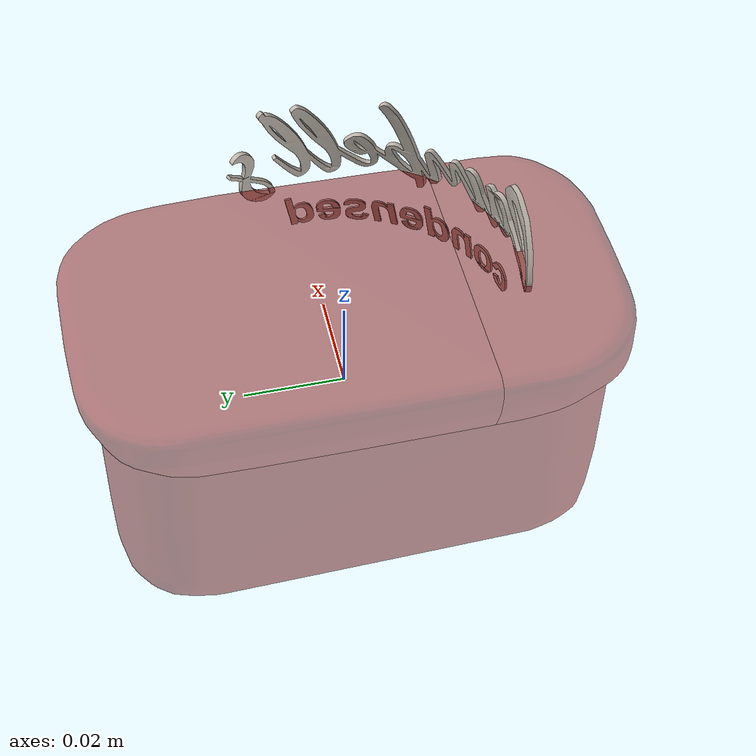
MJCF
<?xml version='1.0' encoding='utf-8'?>
<mujoco model="more_canned_food_14">
  <asset>
    <mesh file="visual/model_normalized_0.obj" name="model_normalized_0_vis" scale="0.10349999999999997 0.10349999999999997 0.10349999999999997" refquat="1.0 0.0 0.0 0.0" />
    <texture type="2d" name="image0" file="visual/image0.png" />
    <material name="material0.001" texture="image0" specular="0.5" shininess="0.001788855" />
    <mesh file="collision/collision_mesh_collision_0.obj" name="canned_collision_mesh_0" scale="0.10349999999999997 0.10349999999999997 0.10349999999999997" refquat="1.0 0.0 0.0 0.0" />
    <mesh file="collision/collision_mesh_collision_1.obj" name="canned_collision_mesh_1" scale="0.10349999999999997 0.10349999999999997 0.10349999999999997" refquat="1.0 0.0 0.0 0.0" />
    <mesh file="collision/collision_mesh_collision_2.obj" name="canned_collision_mesh_2" scale="0.10349999999999997 0.10349999999999997 0.10349999999999997" refquat="1.0 0.0 0.0 0.0" />
  </asset>
  <default>
    <default class="region">
      <geom group="1" conaffinity="0" contype="0" rgba="0 1 0 0" mass="0" />
    </default>
    <default class="collision">
      <geom group="0" rgba="0.5 0 0 0.5" density="1039.774315250" />
    </default>
  </default>
  <worldbody>
    <body>
      <body name="object">
        <geom solimp="0.998 0.998 0.001" solref="0.001 1" density="103.977431525" friction="0.95 0.3 0.1" type="mesh" mesh="model_normalized_0_vis" conaffinity="0" contype="0" group="1" material="material0.001" />
        <geom class="region" name="reg_bbox" type="box" pos="-2.16967049999988e-05 -2.547652500000579e-06 8.664502499999801e-05" size="0.030054712949999993 0.052277172592499976 0.027618243254999994" />
        <geom mesh="canned_collision_mesh_0" type="mesh" class="collision" />
        <geom mesh="canned_collision_mesh_1" type="mesh" class="collision" />
        <geom mesh="canned_collision_mesh_2" type="mesh" class="collision" />
      </body>
    </body>
  </worldbody>
</mujoco>
